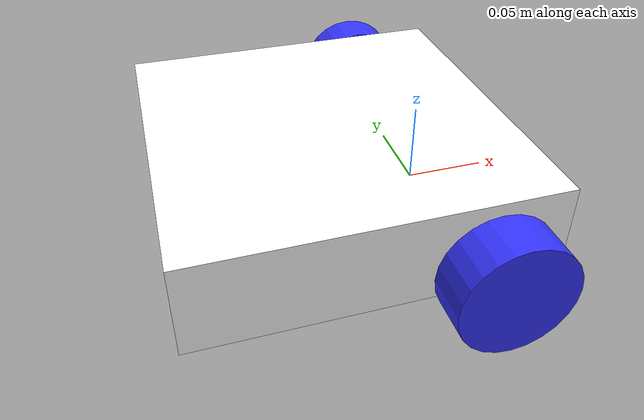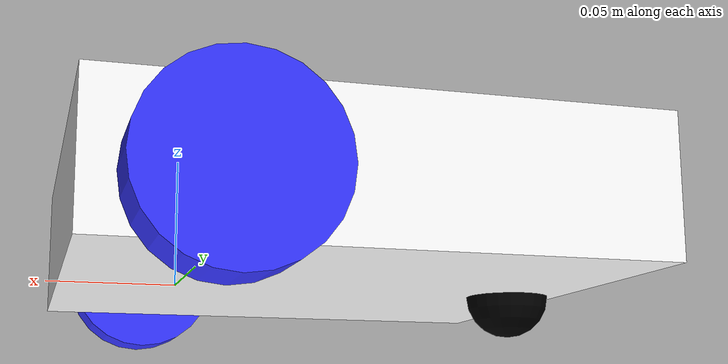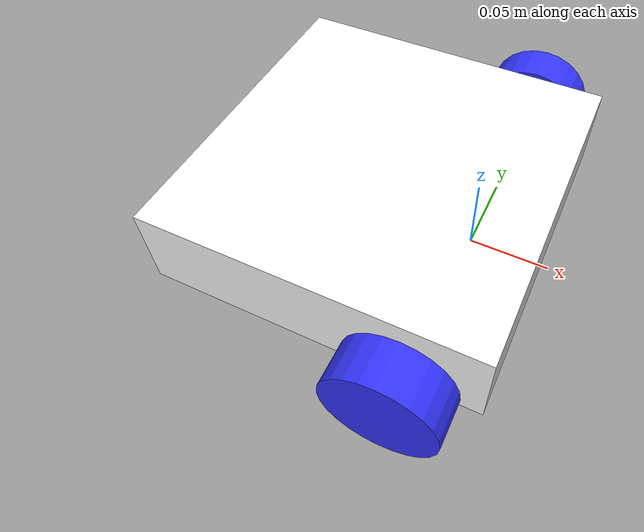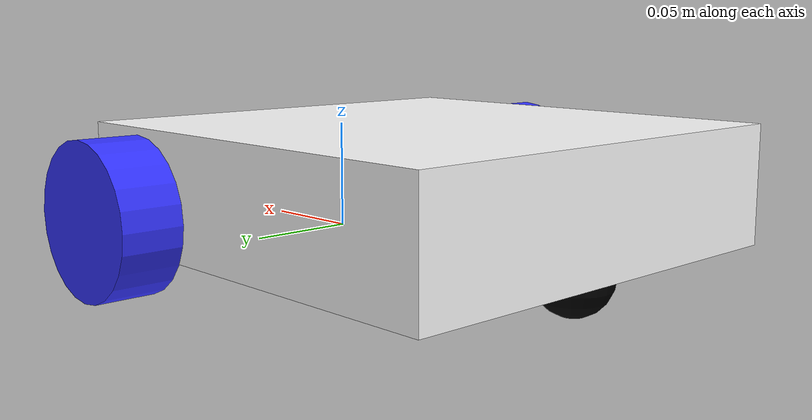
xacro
<?xml version="1.0"?>
<robot xmlns:xacro="http://www.ros.org/wiki/xacro"  >

    <xacro:include filename="inertial_macros.xacro"/>

    <!-- Pre-defined colors -->
    <material name="white">
        <color rgba="1 1 1 1"/>
    </material>

    <material name="orange">
        <color rgba="1 0.3 0.1 1"/>
    </material>

    <material name="blue">
        <color rgba="0.2 0.2 1 1"/>
    </material>

    <material name="black">
        <color rgba="0 0 0 1"/>
    </material>

    <material name="red">
        <color rgba="1 0 0 1"/>
    </material>

    <!-- END Pre-defined colors -->

    <!-- Base Link -->
    <link name="base_link">

    </link>

    <!-- Base Footprint Link -->
    <joint name="base_footprint_joint" type="fixed">
        <parent link="base_link"/>
        <child link="base_footprint"/>
        <origin xyz="0 0 0" rpy="0 0 0"/>
    </joint>

    <link name="base_footprint">
    </link>

    <!-- Chassis link -->
    <joint name="chassis_joint" type="fixed">
        <parent link="base_link"/>
        <child link="chassis"/>
        <origin xyz="-0.1624 0 0"/>
    </joint>

    <link name="chassis">
        <visual>
            <origin xyz="0.104 0 0.02725" rpy="0 0 0"/>
            <geometry>
                <box size="0.208 0.208 0.0545"/>
            </geometry>
            <material name="white"/>
        </visual>

        <collision>
            <origin xyz="0.104 0 0.02725" rpy="0 0 0"/>
            <geometry>
                <box size="0.208 0.208 0.0545"/>
            </geometry>
            <material name="white"/>
        </collision>

        <xacro:inertial_box mass="0.5" x="0.3" y="0.3" z="0.15">
            <origin xyz="0.15 0 0.075" rpy="0 0 0"/>
        </xacro:inertial_box>
    </link>

    <gazebo reference="chassis">
        <material>Gazebo/White</material>
    </gazebo>

    <!-- Left Wheel Link -->
    <joint name="left_wheel_joint" type="continuous">
        <parent link="base_link"/>
        <child link="left_wheel"/>
        <origin xyz="0 0.12315 0.019" rpy="-${pi/2} 0 0"/>
        <axis xyz="0 0 1"/>
    </joint>

    <link name="left_wheel">
        <visual>
            <geometry>
                <cylinder radius="0.03365" length="0.0267"/>/>
            </geometry>
            <material name="blue"/>
        </visual>

        <collision>
            <geometry>
                <cylinder radius="0.03365" length="0.0267"/>/>
            </geometry>
            <material name="blue"/>
        </collision>

        <xacro:inertial_cylinder mass="0.1" length="0.0267" radius="0.03365">
            <origin xyz="0 0 0" rpy="0 0 0"/>
        </xacro:inertial_cylinder>
    </link>

    <gazebo reference="left_wheel">
        <material>Gazebo/Blue</material>
    </gazebo>

    <!-- Right Wheel Link -->
    <joint name="right_wheel_joint" type="continuous">
        <parent link="base_link"/>
        <child link="right_wheel"/>
        <origin xyz="0 -0.12315 0.019" rpy="${pi/2} 0 0"/>
        <axis xyz="0 0 -1"/>
    </joint>

    <link name="right_wheel">
        <visual>
            <geometry>
                <cylinder length="0.0267" radius="0.03365" />/>
            </geometry>
            <material name="blue"/>
        </visual>

        <collision>
            <geometry>
                <cylinder length="0.0267" radius="0.03365" />/>
            </geometry>
            <material name="blue"/>
        </collision>

        <xacro:inertial_cylinder mass="0.1" length="0.0267" radius="0.03365">
            <origin xyz="0 0 0" rpy="0 0 0"/>
        </xacro:inertial_cylinder>
    </link>

    <gazebo reference="right_wheel">
        <material>Gazebo/Blue</material>
    </gazebo>

    <!-- Castor Wheel Link -->
    <joint name="castor_wheel_joint" type="fixed">
        <parent link="chassis"/>
        <child link="castor_wheel"/>
        <origin xyz="0.02 0 0"/>
    </joint>

    <link name="castor_wheel">
        <visual>
            <geometry>
                <sphere radius="0.0171"/>
            </geometry>
            <material name="black"/>
        </visual>

        <collision>
            <geometry>
                <sphere radius="0.0171"/>
            </geometry>
            <material name="black"/>
        </collision>

        <xacro:inertial_sphere mass="0.1" radius="0.0171">
            <origin xyz="0 0 0" rpy="0 0 0"/>
        </xacro:inertial_sphere>
    </link>

    <gazebo reference="castor_wheel">
        <material>Gazebo/Black</material>
        <mu1 value="0.001"/>
        <mu2 value="0.001"/>
    </gazebo>

</robot>
